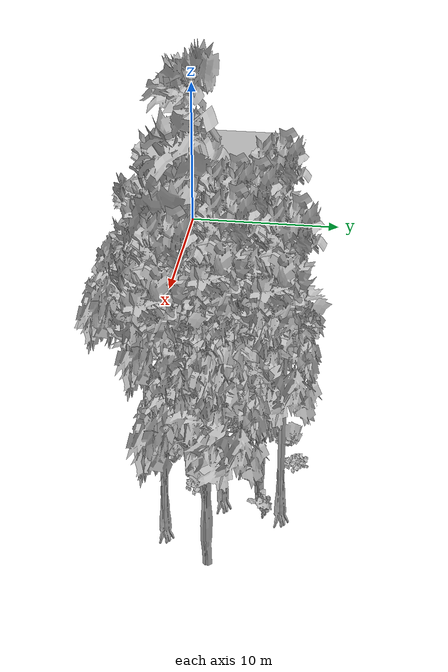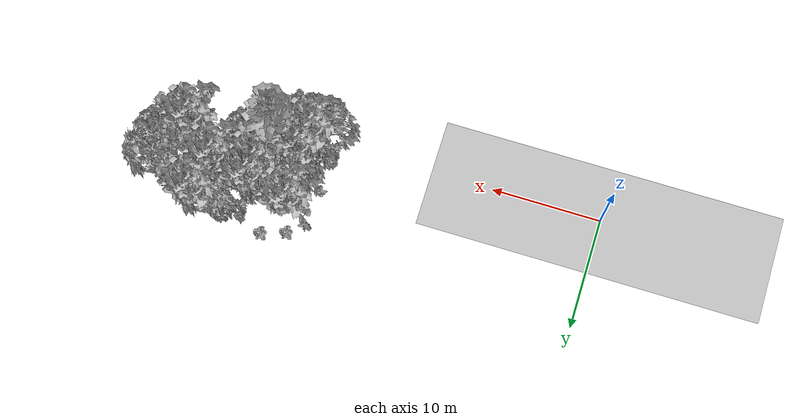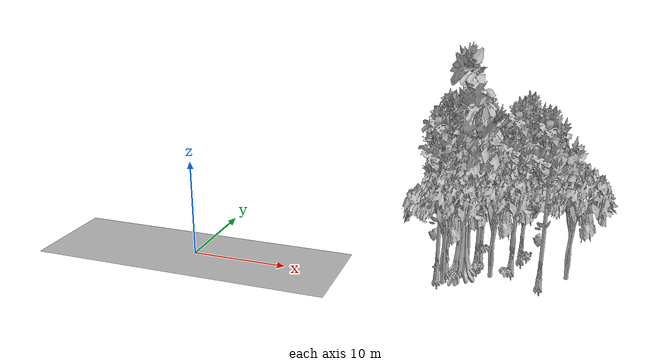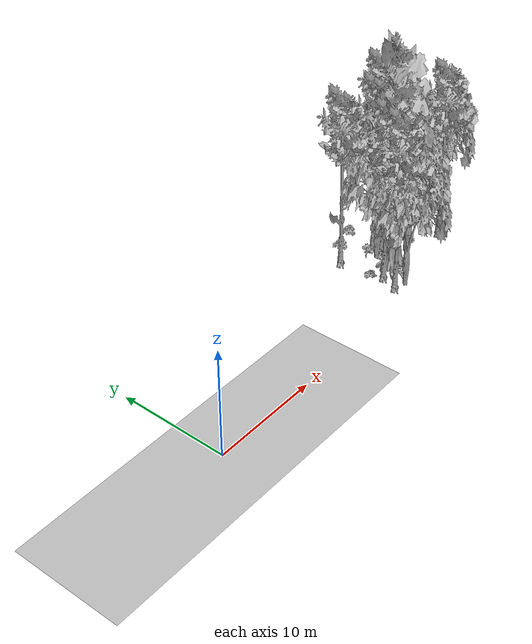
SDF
<sdf version="1.7">
 <world name="default">
  <model name="ground_plane">
   <static>1</static>
   <link name="link">
    <collision name="collision">
     <geometry><plane><normal>0 0 1</normal><size>100 100</size></plane></geometry>
     <surface><contact><ode><min_depth>0.01</min_depth><max_vel>0</max_vel></ode></contact></surface>
    </collision>
    <visual name="grass">
     <cast_shadows>0</cast_shadows>
     <geometry>
      <mesh>
       <scale>0.5814285714285714 0.18142857142857144 0.1</scale>
       <uri>file://grass_plane/meshes/grass_plane.dae</uri>
      </mesh>
     </geometry>
    </visual>
   </link>
  </model>
  <model name="Tree 13">
   <static>1</static>
   <pose>36.778225727323544 6.261298513556863 0 1.57079 -0 0</pose>
   <link name="link">
    <collision name="collision">
     <geometry><mesh><scale>3.5 5 3.5</scale><uri>model://tree_2/meshes/tree_2.obj</uri></mesh></geometry>
    </collision>
    <visual name="visual">
     <geometry><mesh><scale>3.5 5 3.5</scale><uri>model://tree_2/meshes/tree_2.obj</uri></mesh></geometry>
    </visual>
   </link>
  </model>
  <model name="Tree 21">
   <static>1</static>
   <pose>25.555569480309188 1.4773219222838918 0 1.57079 -0 0</pose>
   <link name="link">
    <collision name="collision">
     <geometry><mesh><scale>3.5 5 3.5</scale><uri>model://tree_2/meshes/tree_2.obj</uri></mesh></geometry>
    </collision>
    <visual name="visual">
     <geometry><mesh><scale>3.5 5 3.5</scale><uri>model://tree_2/meshes/tree_2.obj</uri></mesh></geometry>
    </visual>
   </link>
  </model>
  <model name="Tree 33">
   <static>1</static>
   <pose>29.740778404452996 4.340799564488414 0 1.57079 -0 0</pose>
   <link name="link">
    <collision name="collision">
     <geometry><mesh><scale>3.5 5 3.5</scale><uri>model://tree_2/meshes/tree_2.obj</uri></mesh></geometry>
    </collision>
    <visual name="visual">
     <geometry><mesh><scale>3.5 5 3.5</scale><uri>model://tree_2/meshes/tree_2.obj</uri></mesh></geometry>
    </visual>
   </link>
  </model>
  <model name="Tree 59">
   <static>1</static>
   <pose>27.28284743443966 5.791732705700067 0 1.57079 -0 0</pose>
   <link name="link">
    <collision name="collision">
     <geometry><mesh><scale>3.5 5 3.5</scale><uri>model://tree_2/meshes/tree_2.obj</uri></mesh></geometry>
    </collision>
    <visual name="visual">
     <geometry><mesh><scale>3.5 5 3.5</scale><uri>model://tree_2/meshes/tree_2.obj</uri></mesh></geometry>
    </visual>
   </link>
  </model>
  <model name="Tree 86">
   <static>1</static>
   <pose>27.004785774889115 3.7594799711334197 0 1.57079 -0 0</pose>
   <link name="link">
    <collision name="collision">
     <geometry><mesh><scale>3.5 5 3.5</scale><uri>model://tree_4/meshes/tree_4.obj</uri></mesh></geometry>
    </collision>
    <visual name="visual">
     <geometry><mesh><scale>3.5 5 3.5</scale><uri>model://tree_4/meshes/tree_4.obj</uri></mesh></geometry>
    </visual>
   </link>
  </model>
  <model name="Tree 115">
   <static>1</static>
   <pose>32.37804154187552 9.335866485928566 0 1.57079 -0 0</pose>
   <link name="link">
    <collision name="collision">
     <geometry><mesh><scale>3.5 5 3.5</scale><uri>model://tree_9/meshes/tree_9.obj</uri></mesh></geometry>
    </collision>
    <visual name="visual">
     <geometry><mesh><scale>3.5 5 3.5</scale><uri>model://tree_9/meshes/tree_9.obj</uri></mesh></geometry>
    </visual>
   </link>
  </model>
  <model name="Tree 172">
   <static>1</static>
   <pose>28.553934670848193 7.052546768408131 0 1.57079 -0 0</pose>
   <link name="link">
    <collision name="collision">
     <geometry><mesh><scale>3.5 5 3.5</scale><uri>model://tree_9/meshes/tree_9.obj</uri></mesh></geometry>
    </collision>
    <visual name="visual">
     <geometry><mesh><scale>3.5 5 3.5</scale><uri>model://tree_9/meshes/tree_9.obj</uri></mesh></geometry>
    </visual>
   </link>
  </model>
  <model name="Tree 193">
   <static>1</static>
   <pose>34.39807408177671 3.840714612021671 0 1.57079 -0 0</pose>
   <link name="link">
    <collision name="collision">
     <geometry><mesh><scale>3.5 5 3.5</scale><uri>model://tree_9/meshes/tree_9.obj</uri></mesh></geometry>
    </collision>
    <visual name="visual">
     <geometry><mesh><scale>3.5 5 3.5</scale><uri>model://tree_9/meshes/tree_9.obj</uri></mesh></geometry>
    </visual>
   </link>
  </model>
  <model name="Tree 194">
   <static>1</static>
   <pose>24.953459052922156 7.9892798318898635 0 1.57079 -0 0</pose>
   <link name="link">
    <collision name="collision">
     <geometry><mesh><scale>3.5 5 3.5</scale><uri>model://tree_9/meshes/tree_9.obj</uri></mesh></geometry>
    </collision>
    <visual name="visual">
     <geometry><mesh><scale>3.5 5 3.5</scale><uri>model://tree_9/meshes/tree_9.obj</uri></mesh></geometry>
    </visual>
   </link>
  </model>
  <model name="Tree 249">
   <static>1</static>
   <pose>28.294218216483912 5.942662333483117 0 1.57079 -0 0</pose>
   <link name="link">
    <collision name="collision">
     <geometry><mesh><scale>3.5 5 3.5</scale><uri>model://tree_9/meshes/tree_9.obj</uri></mesh></geometry>
    </collision>
    <visual name="visual">
     <geometry><mesh><scale>3.5 5 3.5</scale><uri>model://tree_9/meshes/tree_9.obj</uri></mesh></geometry>
    </visual>
   </link>
  </model>
  <model name="Tree 251">
   <static>1</static>
   <pose>31.628724439760873 6.338898353489622 0 1.57079 -0 0</pose>
   <link name="link">
    <collision name="collision">
     <geometry><mesh><scale>3.5 5 3.5</scale><uri>model://tree_9/meshes/tree_9.obj</uri></mesh></geometry>
    </collision>
    <visual name="visual">
     <geometry><mesh><scale>3.5 5 3.5</scale><uri>model://tree_9/meshes/tree_9.obj</uri></mesh></geometry>
    </visual>
   </link>
  </model>
  <model name="Tree 319">
   <static>1</static>
   <pose>24.96966861354828 2.0895327495208207 0 1.57079 -0 0</pose>
   <link name="link">
    <collision name="collision">
     <geometry><mesh><scale>3.5 5 3.5</scale><uri>model://tree_9/meshes/tree_9.obj</uri></mesh></geometry>
    </collision>
    <visual name="visual">
     <geometry><mesh><scale>3.5 5 3.5</scale><uri>model://tree_9/meshes/tree_9.obj</uri></mesh></geometry>
    </visual>
   </link>
  </model>
  <model name="Tree 357">
   <static>1</static>
   <pose>31.500994599568585 8.1786626814227 0 1.57079 -0 0</pose>
   <link name="link">
    <collision name="collision">
     <geometry><mesh><scale>3.5 5 3.5</scale><uri>model://tree_2/meshes/tree_2.obj</uri></mesh></geometry>
    </collision>
    <visual name="visual">
     <geometry><mesh><scale>3.5 5 3.5</scale><uri>model://tree_2/meshes/tree_2.obj</uri></mesh></geometry>
    </visual>
   </link>
  </model>
  <model name="Tree 362">
   <static>1</static>
   <pose>25.602506014576377 3.7533904495676573 0 1.57079 -0 0</pose>
   <link name="link">
    <collision name="collision">
     <geometry><mesh><scale>3.5 5 3.5</scale><uri>model://tree_9/meshes/tree_9.obj</uri></mesh></geometry>
    </collision>
    <visual name="visual">
     <geometry><mesh><scale>3.5 5 3.5</scale><uri>model://tree_9/meshes/tree_9.obj</uri></mesh></geometry>
    </visual>
   </link>
  </model>
  <model name="Bush 19">
   <static>1</static>
   <pose>32.99620047577545 8.520286660888495 0 1.57079 -0 0</pose>
   <link name="link">
    <collision name="collision">
     <geometry><mesh><scale>2 2 2</scale><uri>model://bush_0/meshes/bush_0.obj</uri></mesh></geometry>
     <surface><contact><collide_without_contact>false</collide_without_contact></contact></surface>
    </collision>
    <visual name="visual">
     <geometry><mesh><scale>2 2 2</scale><uri>model://bush_0/meshes/bush_0.obj</uri></mesh></geometry>
    </visual>
   </link>
  </model>
  <model name="Bush 37">
   <static>1</static>
   <pose>26.493253168667337 9.151759935540944 0 1.57079 -0 0</pose>
   <link name="link">
    <collision name="collision">
     <geometry><mesh><scale>2 2 2</scale><uri>model://bush_3/meshes/bush_3.obj</uri></mesh></geometry>
     <surface><contact><collide_without_contact>false</collide_without_contact></contact></surface>
    </collision>
    <visual name="visual">
     <geometry><mesh><scale>2 2 2</scale><uri>model://bush_3/meshes/bush_3.obj</uri></mesh></geometry>
    </visual>
   </link>
  </model>
  <model name="Bush 173">
   <static>1</static>
   <pose>26.735053247957183 6.463936276453765 0 1.57079 -0 0</pose>
   <link name="link">
    <collision name="collision">
     <geometry><mesh><scale>2 2 2</scale><uri>model://bush_5/meshes/bush_5.obj</uri></mesh></geometry>
     <surface><contact><collide_without_contact>false</collide_without_contact></contact></surface>
    </collision>
    <visual name="visual">
     <geometry><mesh><scale>2 2 2</scale><uri>model://bush_5/meshes/bush_5.obj</uri></mesh></geometry>
    </visual>
   </link>
  </model>
  <model name="Bush 210">
   <static>1</static>
   <pose>28.688781396621792 9.86810354198516 0 1.57079 -0 0</pose>
   <link name="link">
    <collision name="collision">
     <geometry><mesh><scale>2 2 2</scale><uri>model://bush_3/meshes/bush_3.obj</uri></mesh></geometry>
     <surface><contact><collide_without_contact>false</collide_without_contact></contact></surface>
    </collision>
    <visual name="visual">
     <geometry><mesh><scale>2 2 2</scale><uri>model://bush_3/meshes/bush_3.obj</uri></mesh></geometry>
    </visual>
   </link>
  </model>
  <model name="Bush 226">
   <static>1</static>
   <pose>26.683334039243988 2.8933432497211165 0 1.57079 -0 0</pose>
   <link name="link">
    <collision name="collision">
     <geometry><mesh><scale>2 2 2</scale><uri>model://bush_3/meshes/bush_3.obj</uri></mesh></geometry>
     <surface><contact><collide_without_contact>false</collide_without_contact></contact></surface>
    </collision>
    <visual name="visual">
     <geometry><mesh><scale>2 2 2</scale><uri>model://bush_3/meshes/bush_3.obj</uri></mesh></geometry>
    </visual>
   </link>
  </model>
  <model name="Bush 230">
   <static>1</static>
   <pose>28.530659055671535 5.541541526681765 0 1.57079 -0 0</pose>
   <link name="link">
    <collision name="collision">
     <geometry><mesh><scale>2 2 2</scale><uri>model://bush_3/meshes/bush_3.obj</uri></mesh></geometry>
     <surface><contact><collide_without_contact>false</collide_without_contact></contact></surface>
    </collision>
    <visual name="visual">
     <geometry><mesh><scale>2 2 2</scale><uri>model://bush_3/meshes/bush_3.obj</uri></mesh></geometry>
    </visual>
   </link>
  </model>
  <model name="Bush 307">
   <static>1</static>
   <pose>31.246729380117742 5.061311687420069 0 1.57079 -0 0</pose>
   <link name="link">
    <collision name="collision">
     <geometry><mesh><scale>2 2 2</scale><uri>model://bush_3/meshes/bush_3.obj</uri></mesh></geometry>
     <surface><contact><collide_without_contact>false</collide_without_contact></contact></surface>
    </collision>
    <visual name="visual">
     <geometry><mesh><scale>2 2 2</scale><uri>model://bush_3/meshes/bush_3.obj</uri></mesh></geometry>
    </visual>
   </link>
  </model>
  <model name="Bush 333">
   <static>1</static>
   <pose>24.769753446636273 4.5809870853027945 0 1.57079 -0 0</pose>
   <link name="link">
    <collision name="collision">
     <geometry><mesh><scale>2 2 2</scale><uri>model://bush_2/meshes/bush_2.obj</uri></mesh></geometry>
     <surface><contact><collide_without_contact>false</collide_without_contact></contact></surface>
    </collision>
    <visual name="visual">
     <geometry><mesh><scale>2 2 2</scale><uri>model://bush_2/meshes/bush_2.obj</uri></mesh></geometry>
    </visual>
   </link>
  </model>
 </world>
</sdf>
